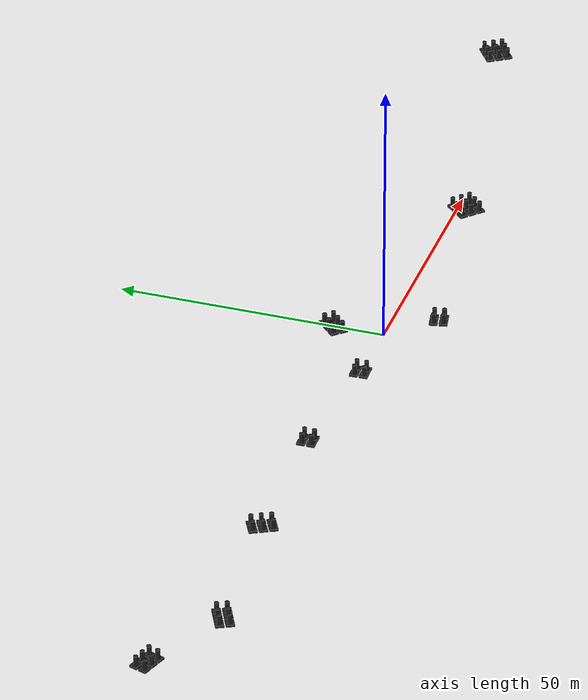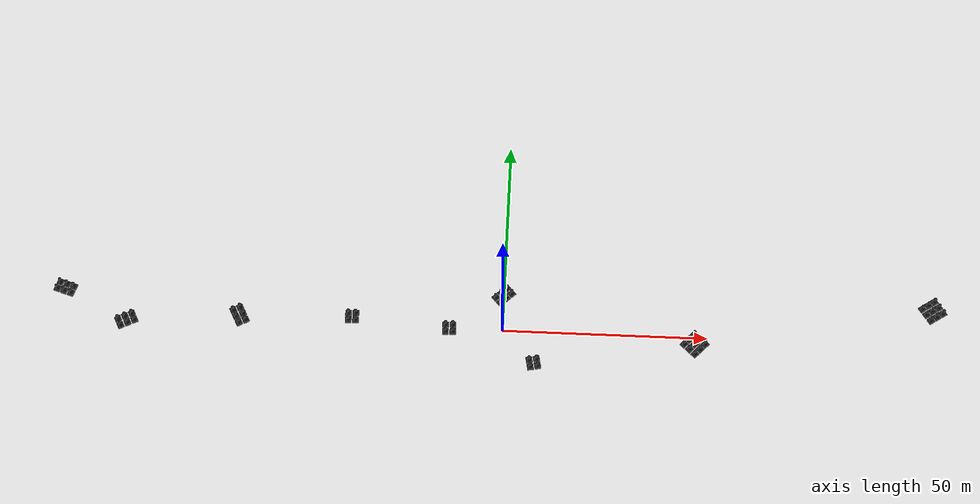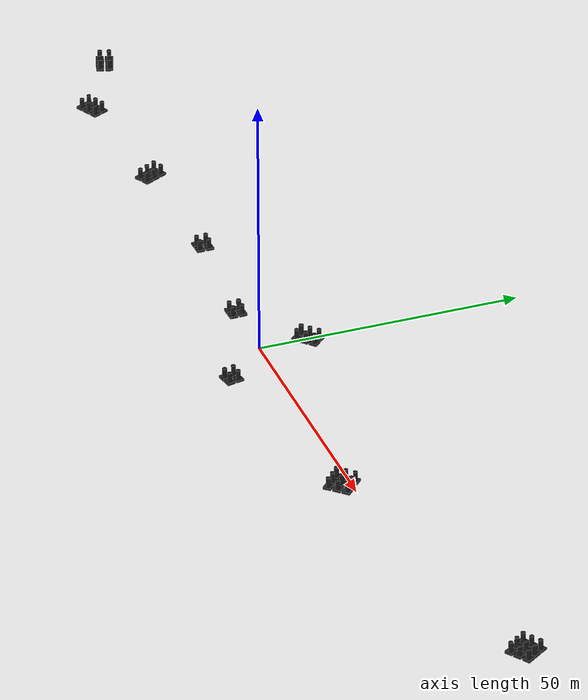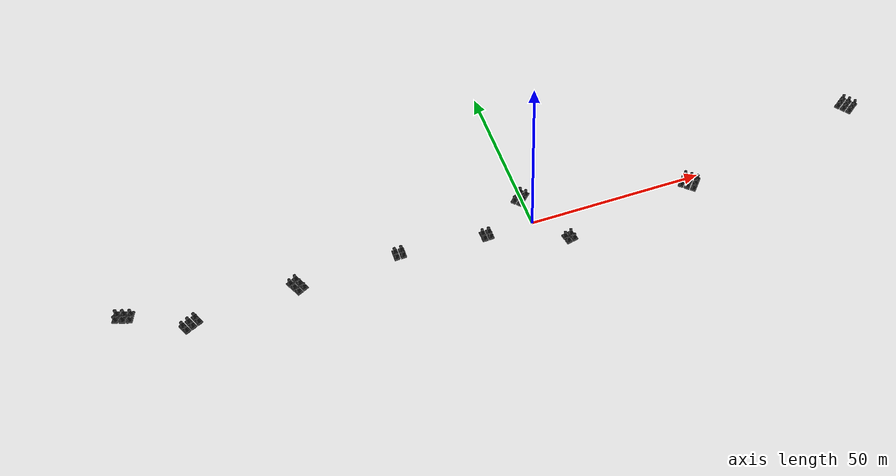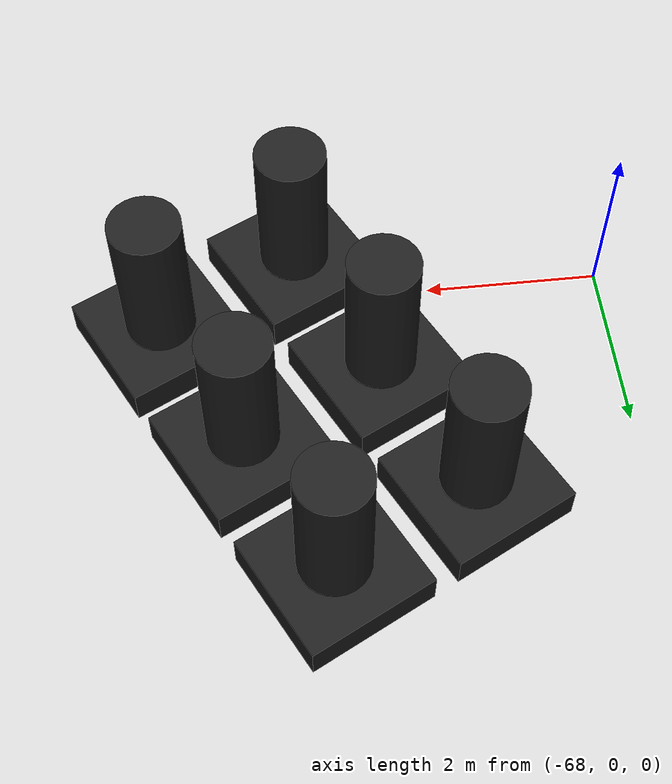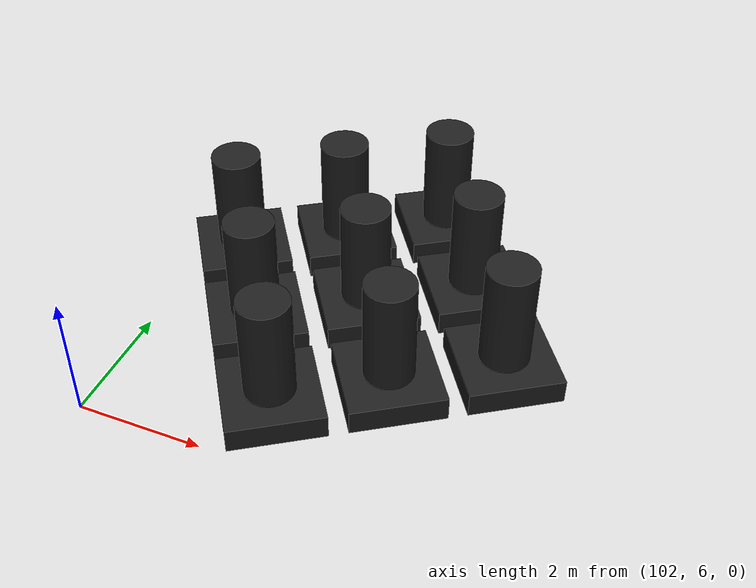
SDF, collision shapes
<?xml version="1.0"?>
<sdf version="1.6">
  <model name="static_buoy_obstacles">
    <static>true</static>
    <!-- block_001: 2 x 2, center (-36.963069, 2.230756), yaw -1.554772 -->
    <include>
      <name>block_001_buoy_01</name>
      <pose>-37.877375 3.116219 0.250000 0 0 -1.554772</pose>
      <uri>model://robotx_light_buoy_static</uri>
    </include>
    <include>
      <name>block_001_buoy_02</name>
      <pose>-37.848532 1.316450 0.250000 0 0 -1.554772</pose>
      <uri>model://robotx_light_buoy_static</uri>
    </include>
    <include>
      <name>block_001_buoy_03</name>
      <pose>-36.077606 3.145062 0.250000 0 0 -1.554772</pose>
      <uri>model://robotx_light_buoy_static</uri>
    </include>
    <include>
      <name>block_001_buoy_04</name>
      <pose>-36.048763 1.345293 0.250000 0 0 -1.554772</pose>
      <uri>model://robotx_light_buoy_static</uri>
    </include>
    <!-- block_002: 2 x 3, center (-92.087919, -0.885311), yaw 2.024475 -->
    <include>
      <name>block_002_buoy_01</name>
      <pose>-90.075558 -0.905373 0.250000 0 0 2.024475</pose>
      <uri>model://robotx_light_buoy_static</uri>
    </include>
    <include>
      <name>block_002_buoy_02</name>
      <pose>-90.864453 0.712541 0.250000 0 0 2.024475</pose>
      <uri>model://robotx_light_buoy_static</uri>
    </include>
    <include>
      <name>block_002_buoy_03</name>
      <pose>-91.693471 -1.694268 0.250000 0 0 2.024475</pose>
      <uri>model://robotx_light_buoy_static</uri>
    </include>
    <include>
      <name>block_002_buoy_04</name>
      <pose>-92.482367 -0.076354 0.250000 0 0 2.024475</pose>
      <uri>model://robotx_light_buoy_static</uri>
    </include>
    <include>
      <name>block_002_buoy_05</name>
      <pose>-93.311385 -2.483163 0.250000 0 0 2.024475</pose>
      <uri>model://robotx_light_buoy_static</uri>
    </include>
    <include>
      <name>block_002_buoy_06</name>
      <pose>-94.100280 -0.865249 0.250000 0 0 2.024475</pose>
      <uri>model://robotx_light_buoy_static</uri>
    </include>
    <!-- block_003: 2 x 2, center (-13.052560, 0.180066), yaw -1.542232 -->
    <include>
      <name>block_003_buoy_01</name>
      <pose>-13.977897 1.053994 0.250000 0 0 -1.542232</pose>
      <uri>model://robotx_light_buoy_static</uri>
    </include>
    <include>
      <name>block_003_buoy_02</name>
      <pose>-13.926488 -0.745271 0.250000 0 0 -1.542232</pose>
      <uri>model://robotx_light_buoy_static</uri>
    </include>
    <include>
      <name>block_003_buoy_03</name>
      <pose>-12.178632 1.105403 0.250000 0 0 -1.542232</pose>
      <uri>model://robotx_light_buoy_static</uri>
    </include>
    <include>
      <name>block_003_buoy_04</name>
      <pose>-12.127223 -0.693862 0.250000 0 0 -1.542232</pose>
      <uri>model://robotx_light_buoy_static</uri>
    </include>
    <!-- block_004: 3 x 2, center (-0.083300, 9.409602), yaw 0.757723 -->
    <include>
      <name>block_004_buoy_01</name>
      <pose>-0.772283 7.518755 0.250000 0 0 0.757723</pose>
      <uri>model://robotx_light_buoy_static</uri>
    </include>
    <include>
      <name>block_004_buoy_02</name>
      <pose>0.535242 8.755839 0.250000 0 0 0.757723</pose>
      <uri>model://robotx_light_buoy_static</uri>
    </include>
    <include>
      <name>block_004_buoy_03</name>
      <pose>1.842767 9.992924 0.250000 0 0 0.757723</pose>
      <uri>model://robotx_light_buoy_static</uri>
    </include>
    <include>
      <name>block_004_buoy_04</name>
      <pose>-2.009367 8.826280 0.250000 0 0 0.757723</pose>
      <uri>model://robotx_light_buoy_static</uri>
    </include>
    <include>
      <name>block_004_buoy_05</name>
      <pose>-0.701842 10.063365 0.250000 0 0 0.757723</pose>
      <uri>model://robotx_light_buoy_static</uri>
    </include>
    <include>
      <name>block_004_buoy_06</name>
      <pose>0.605683 11.300449 0.250000 0 0 0.757723</pose>
      <uri>model://robotx_light_buoy_static</uri>
    </include>
    <!-- block_005: 3 x 3, center (105.031687, 9.712336), yaw 2.157800 -->
    <include>
      <name>block_005_buoy_01</name>
      <pose>107.527338 9.210613 0.250000 0 0 2.157800</pose>
      <uri>model://robotx_light_buoy_static</uri>
    </include>
    <include>
      <name>block_005_buoy_02</name>
      <pose>106.530374 10.709300 0.250000 0 0 2.157800</pose>
      <uri>model://robotx_light_buoy_static</uri>
    </include>
    <include>
      <name>block_005_buoy_03</name>
      <pose>105.533410 12.207987 0.250000 0 0 2.157800</pose>
      <uri>model://robotx_light_buoy_static</uri>
    </include>
    <include>
      <name>block_005_buoy_04</name>
      <pose>106.028651 8.213649 0.250000 0 0 2.157800</pose>
      <uri>model://robotx_light_buoy_static</uri>
    </include>
    <include>
      <name>block_005_buoy_05</name>
      <pose>105.031687 9.712336 0.250000 0 0 2.157800</pose>
      <uri>model://robotx_light_buoy_static</uri>
    </include>
    <include>
      <name>block_005_buoy_06</name>
      <pose>104.034723 11.211023 0.250000 0 0 2.157800</pose>
      <uri>model://robotx_light_buoy_static</uri>
    </include>
    <include>
      <name>block_005_buoy_07</name>
      <pose>104.529964 7.216685 0.250000 0 0 2.157800</pose>
      <uri>model://robotx_light_buoy_static</uri>
    </include>
    <include>
      <name>block_005_buoy_08</name>
      <pose>103.533000 8.715372 0.250000 0 0 2.157800</pose>
      <uri>model://robotx_light_buoy_static</uri>
    </include>
    <include>
      <name>block_005_buoy_09</name>
      <pose>102.536036 10.214059 0.250000 0 0 2.157800</pose>
      <uri>model://robotx_light_buoy_static</uri>
    </include>
    <!-- block_006: 3 x 2, center (-107.891793, 6.986731), yaw 2.830683 -->
    <include>
      <name>block_006_buoy_01</name>
      <pose>-105.902760 7.292916 0.250000 0 0 2.830683</pose>
      <uri>model://robotx_light_buoy_static</uri>
    </include>
    <include>
      <name>block_006_buoy_02</name>
      <pose>-107.616461 7.843581 0.250000 0 0 2.830683</pose>
      <uri>model://robotx_light_buoy_static</uri>
    </include>
    <include>
      <name>block_006_buoy_03</name>
      <pose>-109.330161 8.394246 0.250000 0 0 2.830683</pose>
      <uri>model://robotx_light_buoy_static</uri>
    </include>
    <include>
      <name>block_006_buoy_04</name>
      <pose>-106.453425 5.579216 0.250000 0 0 2.830683</pose>
      <uri>model://robotx_light_buoy_static</uri>
    </include>
    <include>
      <name>block_006_buoy_05</name>
      <pose>-108.167125 6.129881 0.250000 0 0 2.830683</pose>
      <uri>model://robotx_light_buoy_static</uri>
    </include>
    <include>
      <name>block_006_buoy_06</name>
      <pose>-109.880826 6.680546 0.250000 0 0 2.830683</pose>
      <uri>model://robotx_light_buoy_static</uri>
    </include>
    <!-- block_007: 3 x 3, center (46.840216, -1.538462), yaw -0.753609 -->
    <include>
      <name>block_007_buoy_01</name>
      <pose>44.295918 -1.619370 0.250000 0 0 -0.753609</pose>
      <uri>model://robotx_light_buoy_static</uri>
    </include>
    <include>
      <name>block_007_buoy_02</name>
      <pose>45.608521 -2.851065 0.250000 0 0 -0.753609</pose>
      <uri>model://robotx_light_buoy_static</uri>
    </include>
    <include>
      <name>block_007_buoy_03</name>
      <pose>46.921124 -4.082760 0.250000 0 0 -0.753609</pose>
      <uri>model://robotx_light_buoy_static</uri>
    </include>
    <include>
      <name>block_007_buoy_04</name>
      <pose>45.527613 -0.306767 0.250000 0 0 -0.753609</pose>
      <uri>model://robotx_light_buoy_static</uri>
    </include>
    <include>
      <name>block_007_buoy_05</name>
      <pose>46.840216 -1.538462 0.250000 0 0 -0.753609</pose>
      <uri>model://robotx_light_buoy_static</uri>
    </include>
    <include>
      <name>block_007_buoy_06</name>
      <pose>48.152819 -2.770157 0.250000 0 0 -0.753609</pose>
      <uri>model://robotx_light_buoy_static</uri>
    </include>
    <include>
      <name>block_007_buoy_07</name>
      <pose>46.759308 1.005836 0.250000 0 0 -0.753609</pose>
      <uri>model://robotx_light_buoy_static</uri>
    </include>
    <include>
      <name>block_007_buoy_08</name>
      <pose>48.071911 -0.225859 0.250000 0 0 -0.753609</pose>
      <uri>model://robotx_light_buoy_static</uri>
    </include>
    <include>
      <name>block_007_buoy_09</name>
      <pose>49.384514 -1.457554 0.250000 0 0 -0.753609</pose>
      <uri>model://robotx_light_buoy_static</uri>
    </include>
    <!-- block_008: 2 x 2, center (7.810269, -8.085203), yaw 1.760464 -->
    <include>
      <name>block_008_buoy_01</name>
      <pose>8.863809 -8.799384 0.250000 0 0 1.760464</pose>
      <uri>model://robotx_light_buoy_static</uri>
    </include>
    <include>
      <name>block_008_buoy_02</name>
      <pose>8.524450 -7.031663 0.250000 0 0 1.760464</pose>
      <uri>model://robotx_light_buoy_static</uri>
    </include>
    <include>
      <name>block_008_buoy_03</name>
      <pose>7.096088 -9.138743 0.250000 0 0 1.760464</pose>
      <uri>model://robotx_light_buoy_static</uri>
    </include>
    <include>
      <name>block_008_buoy_04</name>
      <pose>6.756729 -7.371022 0.250000 0 0 1.760464</pose>
      <uri>model://robotx_light_buoy_static</uri>
    </include>
    <!-- block_010: 3 x 2, center (-64.507941, 1.481008), yaw -1.095223 -->
    <include>
      <name>block_010_buoy_01</name>
      <pose>-66.132195 2.669199 0.250000 0 0 -1.095223</pose>
      <uri>model://robotx_light_buoy_static</uri>
    </include>
    <include>
      <name>block_010_buoy_02</name>
      <pose>-65.308068 1.068945 0.250000 0 0 -1.095223</pose>
      <uri>model://robotx_light_buoy_static</uri>
    </include>
    <include>
      <name>block_010_buoy_03</name>
      <pose>-64.483942 -0.531310 0.250000 0 0 -1.095223</pose>
      <uri>model://robotx_light_buoy_static</uri>
    </include>
    <include>
      <name>block_010_buoy_04</name>
      <pose>-64.531940 3.493326 0.250000 0 0 -1.095223</pose>
      <uri>model://robotx_light_buoy_static</uri>
    </include>
    <include>
      <name>block_010_buoy_05</name>
      <pose>-63.707814 1.893071 0.250000 0 0 -1.095223</pose>
      <uri>model://robotx_light_buoy_static</uri>
    </include>
    <include>
      <name>block_010_buoy_06</name>
      <pose>-62.883687 0.292817 0.250000 0 0 -1.095223</pose>
      <uri>model://robotx_light_buoy_static</uri>
    </include>
  </model>
</sdf>

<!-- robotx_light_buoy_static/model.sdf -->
<sdf version="1.6">
  <model name="robotx_light_buoy_static">
    <static>true</static>
    <pose>0 0 -0.0762 0 0 0</pose>
    <link name="base_link">
      <visual name="base">
        <geometry>
          <mesh>
            <uri>file://robotx_light_buoy/mesh/robotx_light_buoy.dae</uri>
          </mesh>
        </geometry>
      </visual>
      <visual name="panel_1">
        <pose>-0.05 0.09 1.3 0 0 0.5</pose>
        <geometry>
          <box>
            <size>.192 .01 .386</size>
          </box>
        </geometry>
        <material>
          <script>
            <uri>file://media/materials/scripts/gazebo.material</uri>
            <name>Gazebo/Black</name>
          </script>
        </material>
      </visual>
      <visual name="panel_2">
        <pose>-0.06 -0.085 1.3 0 0 -0.54719</pose>
        <geometry>
          <box>
            <size>.192 .01 .386</size>
          </box>
        </geometry>
        <material>
          <script>
            <uri>file://media/materials/scripts/gazebo.material</uri>
            <name>Gazebo/Black</name>
          </script>
        </material>
      </visual>
      <visual name="panel_3">
        <pose>0.11 -0.003 1.3 0 0 1.5472</pose>
        <geometry>
          <box>
            <size>.192 .01 .386</size>
          </box>
        </geometry>
        <material>
          <script>
            <uri>file://media/materials/scripts/gazebo.material</uri>
            <name>Gazebo/Black</name>
          </script>
        </material>
      </visual>
      <collision name="collision_base">
        <pose>0 0 -0.2 0 0 0</pose>
        <geometry>
          <box>
            <size>1.5 1.5 0.4</size>
          </box>
        </geometry>
      </collision>
      <collision name="collision_body">
        <pose>0 0 0.85 0 0 0</pose>
        <geometry>
          <cylinder>
            <radius>0.4</radius>
            <length>1.75</length>
          </cylinder>
        </geometry>
      </collision>
    </link>
  </model>
</sdf>
